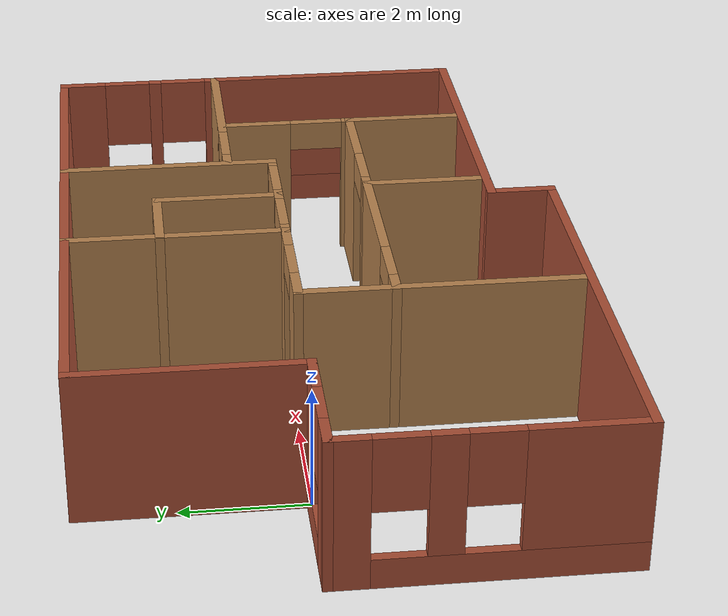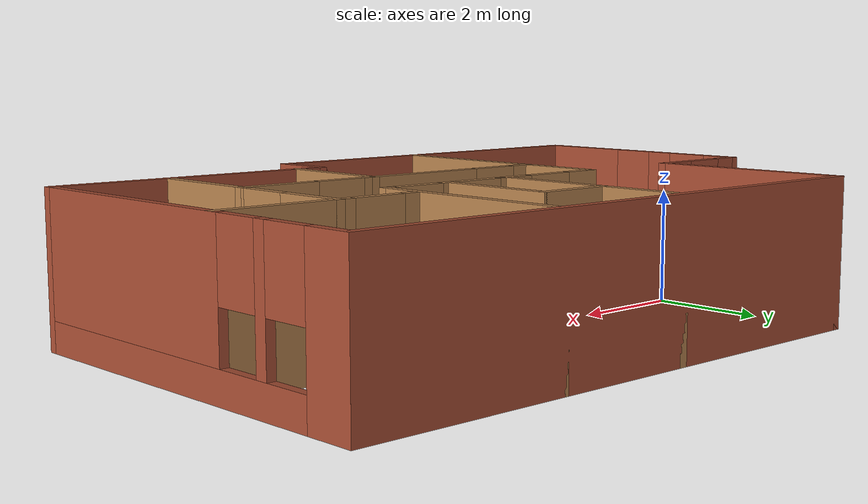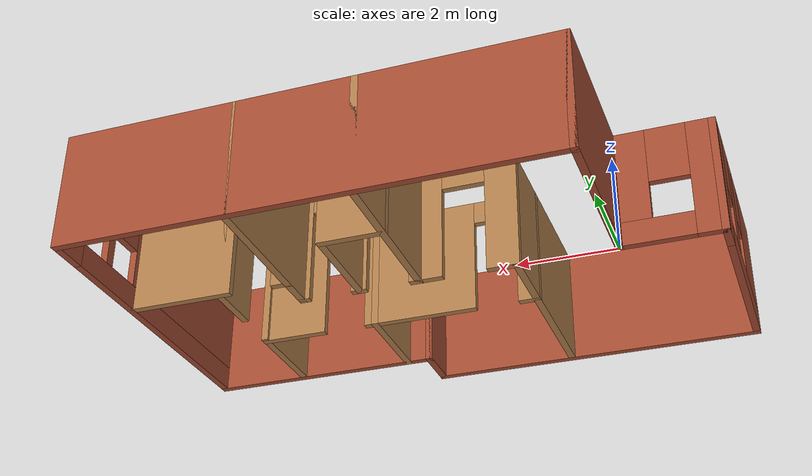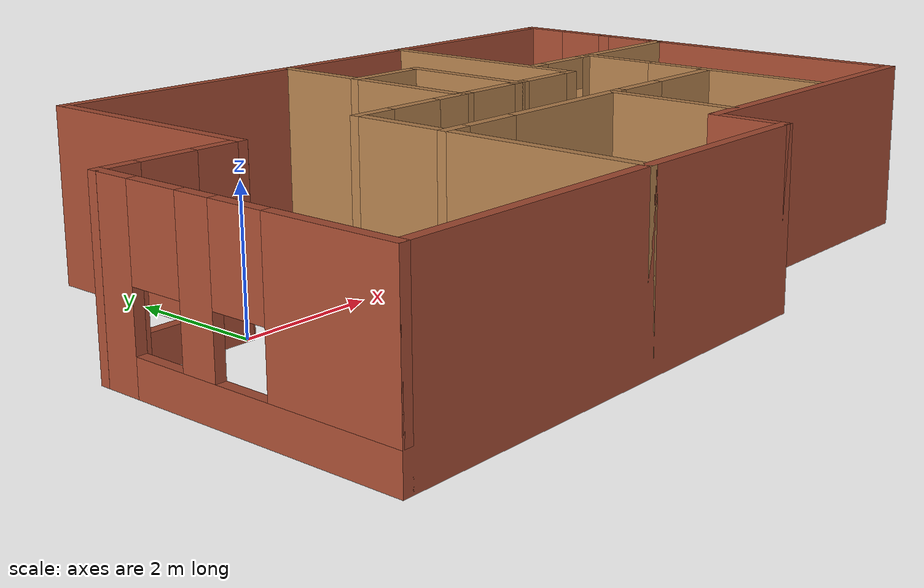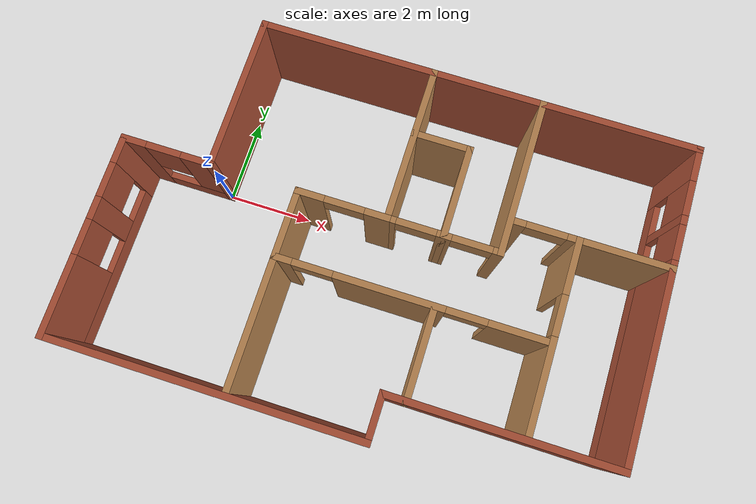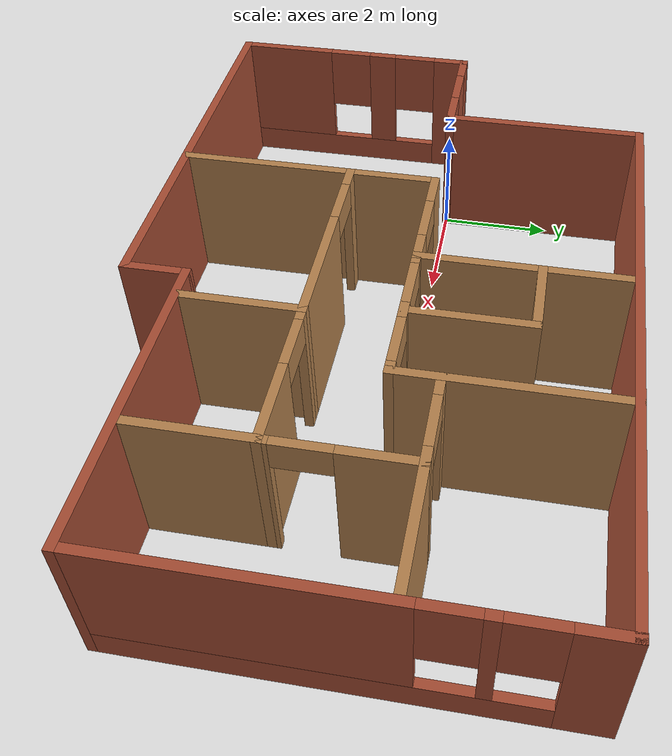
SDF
<?xml version='1.0'?>
<sdf version='1.6'>
  <model name='Building'>
    <pose frame=''>3.99976 -0.5 0 0 -0 0</pose>
    <link name='Wall_53'>
      <collision name='Wall_53_Collision'>
        <geometry>
          <box>
            <size>3.65 0.15 2.5</size>
          </box>
        </geometry>
        <pose frame=''>0 0 1.25 0 -0 0</pose>
      </collision>
      <visual name='Wall_53_Visual'>
        <pose frame=''>0 0 1.25 0 -0 0</pose>
        <geometry>
          <box>
            <size>3.65 0.15 2.5</size>
          </box>
        </geometry>
        <material>
          <script>
            <uri>file://media/materials/scripts/gazebo.material</uri>
            <name>Gazebo/Bricks</name>
          </script>
          <ambient>0.0666667 0.0941176 0.498039 1</ambient>
        </material>
        <meta>
          <layer>0</layer>
        </meta>
      </visual>
      <pose frame=''>-3.99976 2.25 0 0 -0 1.5708</pose>
    </link>
    <link name='Wall_57'>
      <pose frame=''>-5.99976 -1.75 0 0 0 -1.5708</pose>
      <visual name='Wall_57_Visual_0'>
        <pose frame=''>-1.98879 0 1.25 0 -0 0</pose>
        <geometry>
          <box>
            <size>0.672428 0.15 2.5</size>
          </box>
        </geometry>
        <material>
          <script>
            <uri>file://media/materials/scripts/gazebo.material</uri>
            <name>Gazebo/Bricks</name>
          </script>
          <ambient>0.0666667 0.0941176 0.498039 1</ambient>
        </material>
        <meta>
          <layer>0</layer>
        </meta>
      </visual>
      <collision name='Wall_57_Collision_0'>
        <geometry>
          <box>
            <size>0.672428 0.15 2.5</size>
          </box>
        </geometry>
        <pose frame=''>-1.98879 0 1.25 0 -0 0</pose>
      </collision>
      <visual name='Wall_57_Visual_1'>
        <pose frame=''>0.336214 0 0.25 0 -0 0</pose>
        <geometry>
          <box>
            <size>3.97757 0.15 0.5</size>
          </box>
        </geometry>
        <material>
          <script>
            <uri>file://media/materials/scripts/gazebo.material</uri>
            <name>Gazebo/Bricks</name>
          </script>
          <ambient>0.0666667 0.0941176 0.498039 1</ambient>
        </material>
        <meta>
          <layer>0</layer>
        </meta>
      </visual>
      <collision name='Wall_57_Collision_1'>
        <geometry>
          <box>
            <size>3.97757 0.15 0.5</size>
          </box>
        </geometry>
        <pose frame=''>0.336214 0 0.25 0 -0 0</pose>
      </collision>
      <visual name='Wall_57_Visual_2'>
        <pose frame=''>-0.591148 0 1.5 0 -0 0</pose>
        <geometry>
          <box>
            <size>0.522849 0.15 2</size>
          </box>
        </geometry>
        <material>
          <script>
            <uri>file://media/materials/scripts/gazebo.material</uri>
            <name>Gazebo/Bricks</name>
          </script>
          <ambient>0.0666667 0.0941176 0.498039 1</ambient>
        </material>
        <meta>
          <layer>0</layer>
        </meta>
      </visual>
      <collision name='Wall_57_Collision_2'>
        <geometry>
          <box>
            <size>0.522849 0.15 2</size>
          </box>
        </geometry>
        <pose frame=''>-0.591148 0 1.5 0 -0 0</pose>
      </collision>
      <visual name='Wall_57_Visual_3'>
        <pose frame=''>1.39764 0 1.5 0 -0 0</pose>
        <geometry>
          <box>
            <size>1.85472 0.15 2</size>
          </box>
        </geometry>
        <material>
          <script>
            <uri>file://media/materials/scripts/gazebo.material</uri>
            <name>Gazebo/Bricks</name>
          </script>
          <ambient>0.0666667 0.0941176 0.498039 1</ambient>
        </material>
        <meta>
          <layer>0</layer>
        </meta>
      </visual>
      <collision name='Wall_57_Collision_3'>
        <geometry>
          <box>
            <size>1.85472 0.15 2</size>
          </box>
        </geometry>
        <pose frame=''>1.39764 0 1.5 0 -0 0</pose>
      </collision>
      <visual name='Wall_57_Visual_4'>
        <pose frame=''>-1.25257 0 1.9 0 -0 0</pose>
        <geometry>
          <box>
            <size>0.8 0.15 1.2</size>
          </box>
        </geometry>
        <material>
          <script>
            <uri>file://media/materials/scripts/gazebo.material</uri>
            <name>Gazebo/Bricks</name>
          </script>
          <ambient>0.0666667 0.0941176 0.498039 1</ambient>
        </material>
        <meta>
          <layer>0</layer>
        </meta>
      </visual>
      <collision name='Wall_57_Collision_4'>
        <geometry>
          <box>
            <size>0.8 0.15 1.2</size>
          </box>
        </geometry>
        <pose frame=''>-1.25257 0 1.9 0 -0 0</pose>
      </collision>
      <visual name='Wall_57_Visual_5'>
        <pose frame=''>0.070277 0 1.9 0 -0 0</pose>
        <geometry>
          <box>
            <size>0.8 0.15 1.2</size>
          </box>
        </geometry>
        <material>
          <script>
            <uri>file://media/materials/scripts/gazebo.material</uri>
            <name>Gazebo/Bricks</name>
          </script>
          <ambient>0.0666667 0.0941176 0.498039 1</ambient>
        </material>
        <meta>
          <layer>0</layer>
        </meta>
      </visual>
      <collision name='Wall_57_Collision_5'>
        <geometry>
          <box>
            <size>0.8 0.15 1.2</size>
          </box>
        </geometry>
        <pose frame=''>0.070277 0 1.9 0 -0 0</pose>
      </collision>
    </link>
    <link name='Wall_59'>
      <collision name='Wall_59_Collision'>
        <geometry>
          <box>
            <size>7.15 0.15 2.5</size>
          </box>
        </geometry>
        <pose frame=''>0 0 1.25 0 -0 0</pose>
      </collision>
      <visual name='Wall_59_Visual'>
        <pose frame=''>0 0 1.25 0 -0 0</pose>
        <geometry>
          <box>
            <size>7.15 0.15 2.5</size>
          </box>
        </geometry>
        <material>
          <script>
            <uri>file://media/materials/scripts/gazebo.material</uri>
            <name>Gazebo/Bricks</name>
          </script>
          <ambient>0.0666667 0.0941176 0.498039 1</ambient>
        </material>
        <meta>
          <layer>0</layer>
        </meta>
      </visual>
      <pose frame=''>-2.49976 -4 0 0 -0 0</pose>
    </link>
    <link name='Wall_61'>
      <collision name='Wall_61_Collision'>
        <geometry>
          <box>
            <size>1.15 0.15 2.5</size>
          </box>
        </geometry>
        <pose frame=''>0 0 1.25 0 -0 0</pose>
      </collision>
      <visual name='Wall_61_Visual'>
        <pose frame=''>0 0 1.25 0 -0 0</pose>
        <geometry>
          <box>
            <size>1.15 0.15 2.5</size>
          </box>
        </geometry>
        <material>
          <script>
            <uri>file://media/materials/scripts/gazebo.material</uri>
            <name>Gazebo/Bricks</name>
          </script>
          <ambient>0.0666667 0.0941176 0.498039 1</ambient>
        </material>
        <meta>
          <layer>0</layer>
        </meta>
      </visual>
      <pose frame=''>1.00024 -3.5 0 0 -0 1.5708</pose>
    </link>
    <link name='Wall_63'>
      <collision name='Wall_63_Collision'>
        <geometry>
          <box>
            <size>5.15 0.15 2.5</size>
          </box>
        </geometry>
        <pose frame=''>0 0 1.25 0 -0 0</pose>
      </collision>
      <visual name='Wall_63_Visual'>
        <pose frame=''>0 0 1.25 0 -0 0</pose>
        <geometry>
          <box>
            <size>5.15 0.15 2.5</size>
          </box>
        </geometry>
        <material>
          <script>
            <uri>file://media/materials/scripts/gazebo.material</uri>
            <name>Gazebo/Bricks</name>
          </script>
          <ambient>0.0666667 0.0941176 0.498039 1</ambient>
        </material>
        <meta>
          <layer>0</layer>
        </meta>
      </visual>
      <pose frame=''>3.50024 -3 0 0 -0 0</pose>
    </link>
    <link name='Wall_65'>
      <collision name='Wall_65_Collision'>
        <geometry>
          <box>
            <size>10.15 0.15 2.5</size>
          </box>
        </geometry>
        <pose frame=''>0 0 1.25 0 -0 0</pose>
      </collision>
      <visual name='Wall_65_Visual'>
        <pose frame=''>0 0 1.25 0 -0 0</pose>
        <geometry>
          <box>
            <size>10.15 0.15 2.5</size>
          </box>
        </geometry>
        <material>
          <script>
            <uri>file://media/materials/scripts/gazebo.material</uri>
            <name>Gazebo/Bricks</name>
          </script>
          <ambient>0.0666667 0.0941176 0.498039 1</ambient>
        </material>
        <meta>
          <layer>0</layer>
        </meta>
      </visual>
      <pose frame=''>1.00024 4 0 0 -0 0</pose>
    </link>
    <link name='Wall_68'>
      <pose frame=''>6.00024 0.575 0 0 0 -1.5708</pose>
      <visual name='Wall_68_Visual_0'>
        <pose frame=''>-3.09042 0 1.25 0 -0 0</pose>
        <geometry>
          <box>
            <size>0.819158 0.15 2.5</size>
          </box>
        </geometry>
        <material>
          <script>
            <uri>file://media/materials/scripts/gazebo.material</uri>
            <name>Gazebo/Bricks</name>
          </script>
          <ambient>0 0 0.498039 1</ambient>
        </material>
        <meta>
          <layer>0</layer>
        </meta>
      </visual>
      <collision name='Wall_68_Collision_0'>
        <geometry>
          <box>
            <size>0.819158 0.15 2.5</size>
          </box>
        </geometry>
        <pose frame=''>-3.09042 0 1.25 0 -0 0</pose>
      </collision>
      <visual name='Wall_68_Visual_1'>
        <pose frame=''>0.409579 0 0.25 0 -0 0</pose>
        <geometry>
          <box>
            <size>6.18084 0.15 0.5</size>
          </box>
        </geometry>
        <material>
          <script>
            <uri>file://media/materials/scripts/gazebo.material</uri>
            <name>Gazebo/Bricks</name>
          </script>
          <ambient>0 0 0.498039 1</ambient>
        </material>
        <meta>
          <layer>0</layer>
        </meta>
      </visual>
      <collision name='Wall_68_Collision_1'>
        <geometry>
          <box>
            <size>6.18084 0.15 0.5</size>
          </box>
        </geometry>
        <pose frame=''>0.409579 0 0.25 0 -0 0</pose>
      </collision>
      <visual name='Wall_68_Visual_2'>
        <pose frame=''>-1.77324 0 1.5 0 -0 0</pose>
        <geometry>
          <box>
            <size>0.21521 0.15 2</size>
          </box>
        </geometry>
        <material>
          <script>
            <uri>file://media/materials/scripts/gazebo.material</uri>
            <name>Gazebo/Bricks</name>
          </script>
          <ambient>0 0 0.498039 1</ambient>
        </material>
        <meta>
          <layer>0</layer>
        </meta>
      </visual>
      <collision name='Wall_68_Collision_2'>
        <geometry>
          <box>
            <size>0.21521 0.15 2</size>
          </box>
        </geometry>
        <pose frame=''>-1.77324 0 1.5 0 -0 0</pose>
      </collision>
      <visual name='Wall_68_Visual_3'>
        <pose frame=''>1.31718 0 1.5 0 -0 0</pose>
        <geometry>
          <box>
            <size>4.36563 0.15 2</size>
          </box>
        </geometry>
        <material>
          <script>
            <uri>file://media/materials/scripts/gazebo.material</uri>
            <name>Gazebo/Bricks</name>
          </script>
          <ambient>0 0 0.498039 1</ambient>
        </material>
        <meta>
          <layer>0</layer>
        </meta>
      </visual>
      <collision name='Wall_68_Collision_3'>
        <geometry>
          <box>
            <size>4.36563 0.15 2</size>
          </box>
        </geometry>
        <pose frame=''>1.31718 0 1.5 0 -0 0</pose>
      </collision>
      <visual name='Wall_68_Visual_4'>
        <pose frame=''>-2.28084 0 1.9 0 -0 0</pose>
        <geometry>
          <box>
            <size>0.8 0.15 1.2</size>
          </box>
        </geometry>
        <material>
          <script>
            <uri>file://media/materials/scripts/gazebo.material</uri>
            <name>Gazebo/Bricks</name>
          </script>
          <ambient>0 0 0.498039 1</ambient>
        </material>
        <meta>
          <layer>0</layer>
        </meta>
      </visual>
      <collision name='Wall_68_Collision_4'>
        <geometry>
          <box>
            <size>0.8 0.15 1.2</size>
          </box>
        </geometry>
        <pose frame=''>-2.28084 0 1.9 0 -0 0</pose>
      </collision>
      <visual name='Wall_68_Visual_5'>
        <pose frame=''>-1.26563 0 1.9 0 -0 0</pose>
        <geometry>
          <box>
            <size>0.8 0.15 1.2</size>
          </box>
        </geometry>
        <material>
          <script>
            <uri>file://media/materials/scripts/gazebo.material</uri>
            <name>Gazebo/Bricks</name>
          </script>
          <ambient>0 0 0.498039 1</ambient>
        </material>
        <meta>
          <layer>0</layer>
        </meta>
      </visual>
      <collision name='Wall_68_Collision_5'>
        <geometry>
          <box>
            <size>0.8 0.15 1.2</size>
          </box>
        </geometry>
        <pose frame=''>-1.26563 0 1.9 0 -0 0</pose>
      </collision>
    </link>
    <link name='Wall_70'>
      <collision name='Wall_70_Collision'>
        <geometry>
          <box>
            <size>3.65 0.15 2.5</size>
          </box>
        </geometry>
        <pose frame=''>0 0 1.25 0 -0 0</pose>
      </collision>
      <visual name='Wall_70_Visual'>
        <pose frame=''>0 0 1.25 0 -0 0</pose>
        <geometry>
          <box>
            <size>3.65 0.15 2.5</size>
          </box>
        </geometry>
        <material>
          <script>
            <uri>file://media/materials/scripts/gazebo.material</uri>
            <name>Gazebo/Wood</name>
          </script>
          <ambient>0 0 0.498039 1</ambient>
        </material>
        <meta>
          <layer>0</layer>
        </meta>
      </visual>
      <pose frame=''>0.000236 2.25 0 0 0 -1.5708</pose>
    </link>
    <link name='Wall_72'>
      <pose frame=''>-0.999764 0.5 0 0 -0 3.14159</pose>
      <visual name='Wall_72_Visual_0'>
        <pose frame=''>-0.784599 0 1.25 0 -0 0</pose>
        <geometry>
          <box>
            <size>0.580802 0.15 2.5</size>
          </box>
        </geometry>
        <material>
          <script>
            <uri>file://media/materials/scripts/gazebo.material</uri>
            <name>Gazebo/Wood</name>
          </script>
          <ambient>0 0 0.498039 1</ambient>
        </material>
        <meta>
          <layer>0</layer>
        </meta>
      </visual>
      <collision name='Wall_72_Collision_0'>
        <geometry>
          <box>
            <size>0.580802 0.15 2.5</size>
          </box>
        </geometry>
        <pose frame=''>-0.784599 0 1.25 0 -0 0</pose>
      </collision>
      <visual name='Wall_72_Visual_1'>
        <pose frame=''>0.740401 0 1.25 0 -0 0</pose>
        <geometry>
          <box>
            <size>0.669198 0.15 2.5</size>
          </box>
        </geometry>
        <material>
          <script>
            <uri>file://media/materials/scripts/gazebo.material</uri>
            <name>Gazebo/Wood</name>
          </script>
          <ambient>0 0 0.498039 1</ambient>
        </material>
        <meta>
          <layer>0</layer>
        </meta>
      </visual>
      <collision name='Wall_72_Collision_1'>
        <geometry>
          <box>
            <size>0.669198 0.15 2.5</size>
          </box>
        </geometry>
        <pose frame=''>0.740401 0 1.25 0 -0 0</pose>
      </collision>
      <visual name='Wall_72_Visual_2'>
        <pose frame=''>-0.044198 0 2.25 0 -0 0</pose>
        <geometry>
          <box>
            <size>0.9 0.15 0.5</size>
          </box>
        </geometry>
        <material>
          <script>
            <uri>file://media/materials/scripts/gazebo.material</uri>
            <name>Gazebo/Wood</name>
          </script>
          <ambient>0 0 0.498039 1</ambient>
        </material>
        <meta>
          <layer>0</layer>
        </meta>
      </visual>
      <collision name='Wall_72_Collision_2'>
        <geometry>
          <box>
            <size>0.9 0.15 0.5</size>
          </box>
        </geometry>
        <pose frame=''>-0.044198 0 2.25 0 -0 0</pose>
      </collision>
    </link>
    <link name='Wall_76'>
      <pose frame=''>-4.99976 0.5 0 0 -0 0</pose>
      <visual name='Wall_76_Visual_0'>
        <pose frame=''>-0.776822 0 1.25 0 -0 0</pose>
        <geometry>
          <box>
            <size>0.597303 0.15 2.5</size>
          </box>
        </geometry>
        <material>
          <script>
            <uri>file://media/materials/scripts/gazebo.material</uri>
            <name>Gazebo/Bricks</name>
          </script>
          <ambient>0.0666667 0.0941176 0.498039 1</ambient>
        </material>
        <meta>
          <layer>0</layer>
        </meta>
      </visual>
      <collision name='Wall_76_Collision_0'>
        <geometry>
          <box>
            <size>0.597303 0.15 2.5</size>
          </box>
        </geometry>
        <pose frame=''>-0.776822 0 1.25 0 -0 0</pose>
      </collision>
      <visual name='Wall_76_Visual_1'>
        <pose frame=''>0.298651 0 0.25 0 -0 0</pose>
        <geometry>
          <box>
            <size>1.55364 0.15 0.5</size>
          </box>
        </geometry>
        <material>
          <script>
            <uri>file://media/materials/scripts/gazebo.material</uri>
            <name>Gazebo/Bricks</name>
          </script>
          <ambient>0.0666667 0.0941176 0.498039 1</ambient>
        </material>
        <meta>
          <layer>0</layer>
        </meta>
      </visual>
      <collision name='Wall_76_Collision_1'>
        <geometry>
          <box>
            <size>1.55364 0.15 0.5</size>
          </box>
        </geometry>
        <pose frame=''>0.298651 0 0.25 0 -0 0</pose>
      </collision>
      <visual name='Wall_76_Visual_2'>
        <pose frame=''>0.698651 0 1.5 0 -0 0</pose>
        <geometry>
          <box>
            <size>0.753643 0.15 2</size>
          </box>
        </geometry>
        <material>
          <script>
            <uri>file://media/materials/scripts/gazebo.material</uri>
            <name>Gazebo/Bricks</name>
          </script>
          <ambient>0.0666667 0.0941176 0.498039 1</ambient>
        </material>
        <meta>
          <layer>0</layer>
        </meta>
      </visual>
      <collision name='Wall_76_Collision_2'>
        <geometry>
          <box>
            <size>0.753643 0.15 2</size>
          </box>
        </geometry>
        <pose frame=''>0.698651 0 1.5 0 -0 0</pose>
      </collision>
      <visual name='Wall_76_Visual_3'>
        <pose frame=''>-0.07817 0 1.9 0 -0 0</pose>
        <geometry>
          <box>
            <size>0.8 0.15 1.2</size>
          </box>
        </geometry>
        <material>
          <script>
            <uri>file://media/materials/scripts/gazebo.material</uri>
            <name>Gazebo/Bricks</name>
          </script>
          <ambient>0.0666667 0.0941176 0.498039 1</ambient>
        </material>
        <meta>
          <layer>0</layer>
        </meta>
      </visual>
      <collision name='Wall_76_Collision_3'>
        <geometry>
          <box>
            <size>0.8 0.15 1.2</size>
          </box>
        </geometry>
        <pose frame=''>-0.07817 0 1.9 0 -0 0</pose>
      </collision>
    </link>
    <link name='Wall_78'>
      <collision name='Wall_78_Collision'>
        <geometry>
          <box>
            <size>4.65 0.15 2.5</size>
          </box>
        </geometry>
        <pose frame=''>0 0 1.25 0 -0 0</pose>
      </collision>
      <visual name='Wall_78_Visual'>
        <pose frame=''>0 0 1.25 0 -0 0</pose>
        <geometry>
          <box>
            <size>4.65 0.15 2.5</size>
          </box>
        </geometry>
        <material>
          <script>
            <uri>file://media/materials/scripts/gazebo.material</uri>
            <name>Gazebo/Wood</name>
          </script>
          <ambient>0 0 0.498039 1</ambient>
        </material>
        <meta>
          <layer>0</layer>
        </meta>
      </visual>
      <pose frame=''>-1.99976 -1.75 0 0 0 -1.5708</pose>
    </link>
    <link name='Wall_80'>
      <collision name='Wall_80_Collision'>
        <geometry>
          <box>
            <size>3.65 0.15 2.5</size>
          </box>
        </geometry>
        <pose frame=''>0 0 1.25 0 -0 0</pose>
      </collision>
      <visual name='Wall_80_Visual'>
        <pose frame=''>0 0 1.25 0 -0 0</pose>
        <geometry>
          <box>
            <size>3.65 0.15 2.5</size>
          </box>
        </geometry>
        <material>
          <script>
            <uri>file://media/materials/scripts/gazebo.material</uri>
            <name>Gazebo/Wood</name>
          </script>
          <ambient>0 0 0.498039 1</ambient>
        </material>
        <meta>
          <layer>0</layer>
        </meta>
      </visual>
      <pose frame=''>2.50024 2.25 0 0 0 -1.5708</pose>
    </link>
    <link name='Wall_83'>
      <pose frame=''>1.25024 0.5 0 0 -0 3.14159</pose>
      <visual name='Wall_83_Visual_0'>
        <pose frame=''>-1.19974 0 1.25 0 -0 0</pose>
        <geometry>
          <box>
            <size>0.25052 0.15 2.5</size>
          </box>
        </geometry>
        <material>
          <script>
            <uri>file://media/materials/scripts/gazebo.material</uri>
            <name>Gazebo/Wood</name>
          </script>
          <ambient>0 0 0.498039 1</ambient>
        </material>
        <meta>
          <layer>0</layer>
        </meta>
      </visual>
      <collision name='Wall_83_Collision_0'>
        <geometry>
          <box>
            <size>0.25052 0.15 2.5</size>
          </box>
        </geometry>
        <pose frame=''>-1.19974 0 1.25 0 -0 0</pose>
      </collision>
      <visual name='Wall_83_Visual_1'>
        <pose frame=''>-0.009201 0 1.25 0 -0 0</pose>
        <geometry>
          <box>
            <size>0.330557 0.15 2.5</size>
          </box>
        </geometry>
        <material>
          <script>
            <uri>file://media/materials/scripts/gazebo.material</uri>
            <name>Gazebo/Wood</name>
          </script>
          <ambient>0 0 0.498039 1</ambient>
        </material>
        <meta>
          <layer>0</layer>
        </meta>
      </visual>
      <collision name='Wall_83_Collision_1'>
        <geometry>
          <box>
            <size>0.330557 0.15 2.5</size>
          </box>
        </geometry>
        <pose frame=''>-0.009201 0 1.25 0 -0 0</pose>
      </collision>
      <visual name='Wall_83_Visual_2'>
        <pose frame=''>1.19054 0 1.25 0 -0 0</pose>
        <geometry>
          <box>
            <size>0.268922 0.15 2.5</size>
          </box>
        </geometry>
        <material>
          <script>
            <uri>file://media/materials/scripts/gazebo.material</uri>
            <name>Gazebo/Wood</name>
          </script>
          <ambient>0 0 0.498039 1</ambient>
        </material>
        <meta>
          <layer>0</layer>
        </meta>
      </visual>
      <collision name='Wall_83_Collision_2'>
        <geometry>
          <box>
            <size>0.268922 0.15 2.5</size>
          </box>
        </geometry>
        <pose frame=''>1.19054 0 1.25 0 -0 0</pose>
      </collision>
      <visual name='Wall_83_Visual_3'>
        <pose frame=''>-0.62448 0 2.25 0 -0 0</pose>
        <geometry>
          <box>
            <size>0.9 0.15 0.5</size>
          </box>
        </geometry>
        <material>
          <script>
            <uri>file://media/materials/scripts/gazebo.material</uri>
            <name>Gazebo/Wood</name>
          </script>
          <ambient>0 0 0.498039 1</ambient>
        </material>
        <meta>
          <layer>0</layer>
        </meta>
      </visual>
      <collision name='Wall_83_Collision_3'>
        <geometry>
          <box>
            <size>0.9 0.15 0.5</size>
          </box>
        </geometry>
        <pose frame=''>-0.62448 0 2.25 0 -0 0</pose>
      </collision>
      <visual name='Wall_83_Visual_4'>
        <pose frame=''>0.606078 0 2.25 0 -0 0</pose>
        <geometry>
          <box>
            <size>0.9 0.15 0.5</size>
          </box>
        </geometry>
        <material>
          <script>
            <uri>file://media/materials/scripts/gazebo.material</uri>
            <name>Gazebo/Wood</name>
          </script>
          <ambient>0 0 0.498039 1</ambient>
        </material>
        <meta>
          <layer>0</layer>
        </meta>
      </visual>
      <collision name='Wall_83_Collision_4'>
        <geometry>
          <box>
            <size>0.9 0.15 0.5</size>
          </box>
        </geometry>
        <pose frame=''>0.606078 0 2.25 0 -0 0</pose>
      </collision>
    </link>
    <link name='Wall_87'>
      <pose frame=''>4.25024 1.25 0 0 -0 0</pose>
      <visual name='Wall_87_Visual_0'>
        <pose frame=''>-1.61769 0 1.25 0 -0 0</pose>
        <geometry>
          <box>
            <size>0.414621 0.15 2.5</size>
          </box>
        </geometry>
        <material>
          <script>
            <uri>file://media/materials/scripts/gazebo.material</uri>
            <name>Gazebo/Wood</name>
          </script>
          <ambient>0 0 0.498039 1</ambient>
        </material>
        <meta>
          <layer>0</layer>
        </meta>
      </visual>
      <collision name='Wall_87_Collision_0'>
        <geometry>
          <box>
            <size>0.414621 0.15 2.5</size>
          </box>
        </geometry>
        <pose frame=''>-1.61769 0 1.25 0 -0 0</pose>
      </collision>
      <visual name='Wall_87_Visual_1'>
        <pose frame=''>0.65731 0 1.25 0 -0 0</pose>
        <geometry>
          <box>
            <size>2.33538 0.15 2.5</size>
          </box>
        </geometry>
        <material>
          <script>
            <uri>file://media/materials/scripts/gazebo.material</uri>
            <name>Gazebo/Wood</name>
          </script>
          <ambient>0 0 0.498039 1</ambient>
        </material>
        <meta>
          <layer>0</layer>
        </meta>
      </visual>
      <collision name='Wall_87_Collision_1'>
        <geometry>
          <box>
            <size>2.33538 0.15 2.5</size>
          </box>
        </geometry>
        <pose frame=''>0.65731 0 1.25 0 -0 0</pose>
      </collision>
      <visual name='Wall_87_Visual_2'>
        <pose frame=''>-0.960379 0 2.25 0 -0 0</pose>
        <geometry>
          <box>
            <size>0.9 0.15 0.5</size>
          </box>
        </geometry>
        <material>
          <script>
            <uri>file://media/materials/scripts/gazebo.material</uri>
            <name>Gazebo/Wood</name>
          </script>
          <ambient>0 0 0.498039 1</ambient>
        </material>
        <meta>
          <layer>0</layer>
        </meta>
      </visual>
      <collision name='Wall_87_Collision_2'>
        <geometry>
          <box>
            <size>0.9 0.15 0.5</size>
          </box>
        </geometry>
        <pose frame=''>-0.960379 0 2.25 0 -0 0</pose>
      </collision>
    </link>
    <link name='Wall_89'>
      <pose frame=''>4.00024 -0.8 0 0 0 -1.5708</pose>
      <visual name='Wall_89_Visual_0'>
        <pose frame=''>-1.48493 0 1.25 0 -0 0</pose>
        <geometry>
          <box>
            <size>1.28014 0.15 2.5</size>
          </box>
        </geometry>
        <material>
          <script>
            <uri>file://media/materials/scripts/gazebo.material</uri>
            <name>Gazebo/Wood</name>
          </script>
          <ambient>0 0 0.498039 1</ambient>
        </material>
        <meta>
          <layer>0</layer>
        </meta>
      </visual>
      <collision name='Wall_89_Collision_0'>
        <geometry>
          <box>
            <size>1.28014 0.15 2.5</size>
          </box>
        </geometry>
        <pose frame=''>-1.48493 0 1.25 0 -0 0</pose>
      </collision>
      <visual name='Wall_89_Visual_1'>
        <pose frame=''>1.09007 0 1.25 0 -0 0</pose>
        <geometry>
          <box>
            <size>2.06986 0.15 2.5</size>
          </box>
        </geometry>
        <material>
          <script>
            <uri>file://media/materials/scripts/gazebo.material</uri>
            <name>Gazebo/Wood</name>
          </script>
          <ambient>0 0 0.498039 1</ambient>
        </material>
        <meta>
          <layer>0</layer>
        </meta>
      </visual>
      <collision name='Wall_89_Collision_1'>
        <geometry>
          <box>
            <size>2.06986 0.15 2.5</size>
          </box>
        </geometry>
        <pose frame=''>1.09007 0 1.25 0 -0 0</pose>
      </collision>
      <visual name='Wall_89_Visual_2'>
        <pose frame=''>-0.394864 0 2.25 0 -0 0</pose>
        <geometry>
          <box>
            <size>0.9 0.15 0.5</size>
          </box>
        </geometry>
        <material>
          <script>
            <uri>file://media/materials/scripts/gazebo.material</uri>
            <name>Gazebo/Wood</name>
          </script>
          <ambient>0 0 0.498039 1</ambient>
        </material>
        <meta>
          <layer>0</layer>
        </meta>
      </visual>
      <collision name='Wall_89_Collision_2'>
        <geometry>
          <box>
            <size>0.9 0.15 0.5</size>
          </box>
        </geometry>
        <pose frame=''>-0.394864 0 2.25 0 -0 0</pose>
      </collision>
    </link>
    <link name='Wall_92'>
      <pose frame=''>1.00024 -1 0 0 -0 3.14159</pose>
      <visual name='Wall_92_Visual_0'>
        <pose frame=''>-2.35356 0 1.25 0 -0 0</pose>
        <geometry>
          <box>
            <size>1.44288 0.15 2.5</size>
          </box>
        </geometry>
        <material>
          <script>
            <uri>file://media/materials/scripts/gazebo.material</uri>
            <name>Gazebo/Wood</name>
          </script>
          <ambient>0 0 0.498039 1</ambient>
        </material>
        <meta>
          <layer>0</layer>
        </meta>
      </visual>
      <collision name='Wall_92_Collision_0'>
        <geometry>
          <box>
            <size>1.44288 0.15 2.5</size>
          </box>
        </geometry>
        <pose frame=''>-2.35356 0 1.25 0 -0 0</pose>
      </collision>
      <visual name='Wall_92_Visual_1'>
        <pose frame=''>0.494515 0 1.25 0 -0 0</pose>
        <geometry>
          <box>
            <size>2.45327 0.15 2.5</size>
          </box>
        </geometry>
        <material>
          <script>
            <uri>file://media/materials/scripts/gazebo.material</uri>
            <name>Gazebo/Wood</name>
          </script>
          <ambient>0 0 0.498039 1</ambient>
        </material>
        <meta>
          <layer>0</layer>
        </meta>
      </visual>
      <collision name='Wall_92_Collision_1'>
        <geometry>
          <box>
            <size>2.45327 0.15 2.5</size>
          </box>
        </geometry>
        <pose frame=''>0.494515 0 1.25 0 -0 0</pose>
      </collision>
      <visual name='Wall_92_Visual_2'>
        <pose frame=''>2.84808 0 1.25 0 -0 0</pose>
        <geometry>
          <box>
            <size>0.45385 0.15 2.5</size>
          </box>
        </geometry>
        <material>
          <script>
            <uri>file://media/materials/scripts/gazebo.material</uri>
            <name>Gazebo/Wood</name>
          </script>
          <ambient>0 0 0.498039 1</ambient>
        </material>
        <meta>
          <layer>0</layer>
        </meta>
      </visual>
      <collision name='Wall_92_Collision_2'>
        <geometry>
          <box>
            <size>0.45385 0.15 2.5</size>
          </box>
        </geometry>
        <pose frame=''>2.84808 0 1.25 0 -0 0</pose>
      </collision>
      <visual name='Wall_92_Visual_3'>
        <pose frame=''>-1.18212 0 2.25 0 -0 0</pose>
        <geometry>
          <box>
            <size>0.9 0.15 0.5</size>
          </box>
        </geometry>
        <material>
          <script>
            <uri>file://media/materials/scripts/gazebo.material</uri>
            <name>Gazebo/Wood</name>
          </script>
          <ambient>0 0 0.498039 1</ambient>
        </material>
        <meta>
          <layer>0</layer>
        </meta>
      </visual>
      <collision name='Wall_92_Collision_3'>
        <geometry>
          <box>
            <size>0.9 0.15 0.5</size>
          </box>
        </geometry>
        <pose frame=''>-1.18212 0 2.25 0 -0 0</pose>
      </collision>
      <visual name='Wall_92_Visual_4'>
        <pose frame=''>2.17115 0 2.25 0 -0 0</pose>
        <geometry>
          <box>
            <size>0.9 0.15 0.5</size>
          </box>
        </geometry>
        <material>
          <script>
            <uri>file://media/materials/scripts/gazebo.material</uri>
            <name>Gazebo/Wood</name>
          </script>
          <ambient>0 0 0.498039 1</ambient>
        </material>
        <meta>
          <layer>0</layer>
        </meta>
      </visual>
      <collision name='Wall_92_Collision_4'>
        <geometry>
          <box>
            <size>0.9 0.15 0.5</size>
          </box>
        </geometry>
        <pose frame=''>2.17115 0 2.25 0 -0 0</pose>
      </collision>
    </link>
    <link name='Wall_94'>
      <collision name='Wall_94_Collision'>
        <geometry>
          <box>
            <size>2.15 0.15 2.5</size>
          </box>
        </geometry>
        <pose frame=''>0 0 1.25 0 -0 0</pose>
      </collision>
      <visual name='Wall_94_Visual'>
        <pose frame=''>0 0 1.25 0 -0 0</pose>
        <geometry>
          <box>
            <size>2.15 0.15 2.5</size>
          </box>
        </geometry>
        <material>
          <script>
            <uri>file://media/materials/scripts/gazebo.material</uri>
            <name>Gazebo/Wood</name>
          </script>
          <ambient>0 0 0.498039 1</ambient>
        </material>
        <meta>
          <layer>0</layer>
        </meta>
      </visual>
      <pose frame=''>1.50024 -2 0 0 0 -1.5708</pose>
    </link>
    <link name='Wall_96'>
      <collision name='Wall_96_Collision'>
        <geometry>
          <box>
            <size>1.4 0.15 2.5</size>
          </box>
        </geometry>
        <pose frame=''>0 0 1.25 0 -0 0</pose>
      </collision>
      <visual name='Wall_96_Visual'>
        <pose frame=''>0 0 1.25 0 -0 0</pose>
        <geometry>
          <box>
            <size>1.4 0.15 2.5</size>
          </box>
        </geometry>
        <material>
          <script>
            <uri>file://media/materials/scripts/gazebo.material</uri>
            <name>Gazebo/Wood</name>
          </script>
          <ambient>0 0 0.498039 1</ambient>
        </material>
        <meta>
          <layer>0</layer>
        </meta>
      </visual>
      <pose frame=''>0.625236 2.5 0 0 -0 0</pose>
    </link>
    <link name='Wall_97'>
      <collision name='Wall_97_Collision'>
        <geometry>
          <box>
            <size>2.15 0.15 2.5</size>
          </box>
        </geometry>
        <pose frame=''>0 0 1.25 0 -0 0</pose>
      </collision>
      <visual name='Wall_97_Visual'>
        <pose frame=''>0 0 1.25 0 -0 0</pose>
        <geometry>
          <box>
            <size>2.15 0.15 2.5</size>
          </box>
        </geometry>
        <material>
          <script>
            <uri>file://media/materials/scripts/gazebo.material</uri>
            <name>Gazebo/Wood</name>
          </script>
          <ambient>0 0 0.498039 1</ambient>
        </material>
        <meta>
          <layer>0</layer>
        </meta>
      </visual>
      <pose frame=''>1.25024 1.5 0 0 0 -1.5708</pose>
    </link>
    <static>1</static>
  </model>
</sdf>
